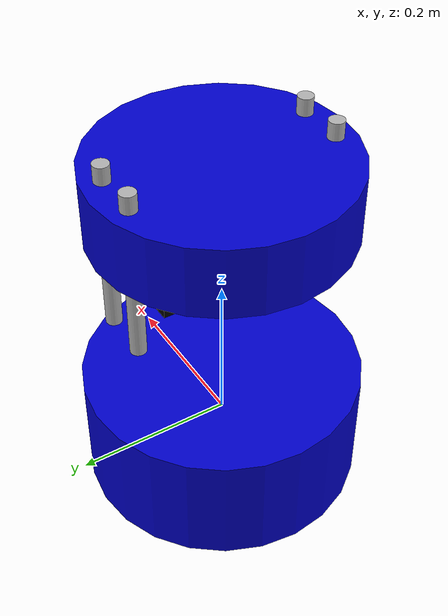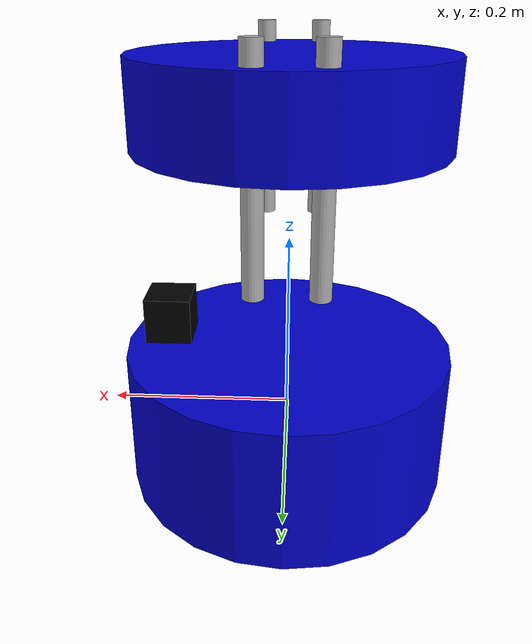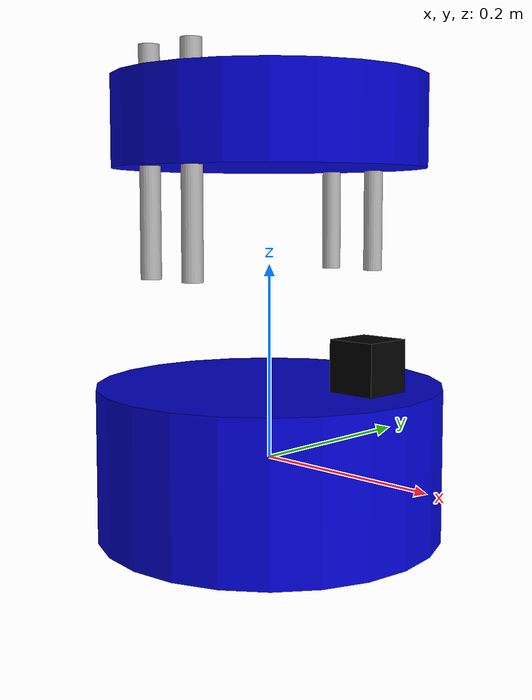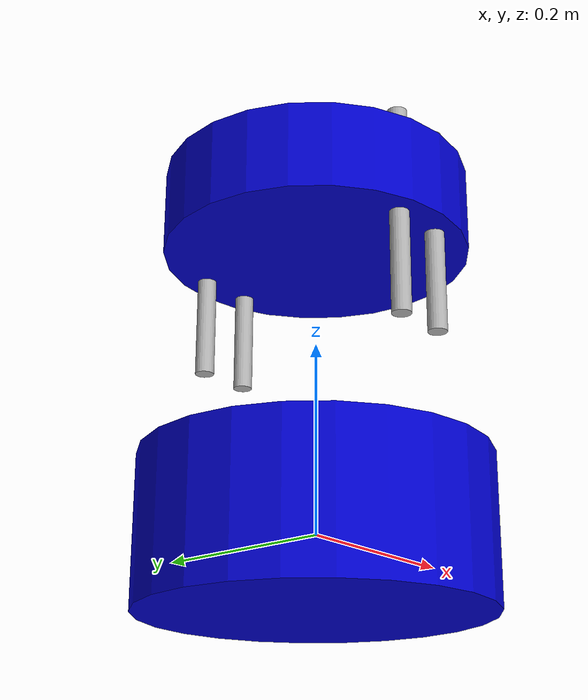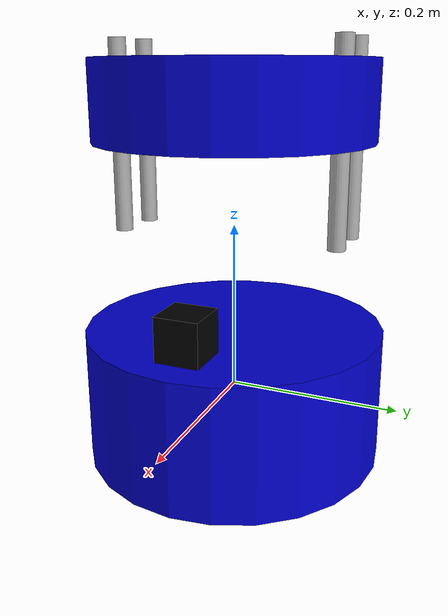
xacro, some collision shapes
<?xml version="1.0"?>
<robot xmlns:xacro="http://www.ros.org/wiki/xacro" name="barista_robot">

  <!-- Include all macros -->
  <xacro:include filename="$(find barista_robot_description)/xacro/drive_wheel.xacro" />
  <xacro:include filename="$(find barista_robot_description)/xacro/caster_wheel.xacro" />
  <xacro:include filename="$(find barista_robot_description)/xacro/standoff_rod.xacro" />
  <xacro:include filename="$(find barista_robot_description)/xacro/cup_holder_tray.xacro" />
  <xacro:include filename="$(find barista_robot_description)/xacro/laser_scanner.xacro" />

  <!-- Define arguments -->
  <xacro:arg name="include_laser" default="true"/>
  <xacro:arg name="robot_color" default="Blue"/>

  <!-- Set color property based on the robot_color parameter -->
  <xacro:property name="robot_gazebo_color" value="Blue"/>
  <xacro:property name="robot_visual_color" value="robot_blue"/>
  <xacro:if value="${'$(arg robot_color)' == 'Red'}">
    <xacro:property name="robot_gazebo_color" value="Red"/>
    <xacro:property name="robot_visual_color" value="robot_red"/>
  </xacro:if>

  <!-- Define colors -->
  <material name="robot_blue">
    <color rgba="0.0 0.0 0.8 1.0"/>
  </material>

  <material name="robot_red">
    <color rgba="0.8 0.0 0.0 1.0"/>
  </material>

  <material name="robot_black">
    <color rgba="0.0 0.0 0.0 1.0"/>
  </material>

  <material name="robot_white">
    <color rgba="1.0 1.0 1.0 1.0"/>
  </material>

  <material name="robot_silver">
    <color rgba="0.7 0.7 0.7 1.0"/>
  </material>

  <!-- Base Link (Main Body) - cylinder with dimensions 356mm width, 155mm height -->
  <link name="base_link">
    <inertial>
      <origin xyz="0 0 0" rpy="0 0 0"/>
      <mass value="5.0"/>
      <inertia ixx="0.1" ixy="0" ixz="0" iyy="0.1" iyz="0" izz="0.1"/>
    </inertial>
    <visual>
      <origin xyz="0 0 0" rpy="0 0 0"/>
      <geometry>
        <cylinder radius="0.178" length="0.155"/>
      </geometry>
      <material name="${robot_visual_color}"/>
    </visual>
    <collision>
      <origin xyz="0 0 0" rpy="0 0 0"/>
      <geometry>
        <cylinder radius="0.178" length="0.155"/>
      </geometry>
    </collision>
  </link>

  <!-- Gazebo color for the base_link -->
  <gazebo reference="base_link">
    <material>Gazebo/${robot_gazebo_color}</material>
  </gazebo>

  <!-- Add wheels using macros -->
  <xacro:drive_wheel prefix="left" reflect="1" />
  <xacro:drive_wheel prefix="right" reflect="-1" />

  <!-- Add caster wheels using macros -->
  <xacro:caster_wheel prefix="front" x_offset="0.12" y_offset="0" />
  <xacro:caster_wheel prefix="rear" x_offset="-0.12" y_offset="0" />

  <!-- Add standoff rods using macros -->
  <xacro:standoff_rod prefix="front_left" x_offset="0.03" y_offset="0.13" />
  <xacro:standoff_rod prefix="front_right" x_offset="0.03" y_offset="-0.13" />
  <xacro:standoff_rod prefix="rear_left" x_offset="-0.03" y_offset="0.13" />
  <xacro:standoff_rod prefix="rear_right" x_offset="-0.03" y_offset="-0.13" />

  <!-- Add cup holder tray using macro -->
  <xacro:cup_holder_tray robot_color="$(arg robot_color)" />

  <!-- Add laser scanner if include_laser is true -->
  <xacro:if value="$(arg include_laser)">
    <xacro:laser_scanner />
  </xacro:if>

  <!-- Differential drive controller -->
  <gazebo>
    <plugin name="gazebo_ros_diff_drive" filename="libgazebo_ros_diff_drive.so">
      <ros>
        <!-- Namespace will be automatically prefixed by the robot's namespace -->
        <namespace>/</namespace>
      </ros>
      <update_rate>100.0</update_rate>
      <left_joint>left_wheel_joint</left_joint>
      <right_joint>right_wheel_joint</right_joint>
      <wheel_separation>0.356</wheel_separation>
      <wheel_diameter>0.0704</wheel_diameter>
      <max_wheel_acceleration>1.0</max_wheel_acceleration>
      <max_wheel_torque>20</max_wheel_torque>
      <command_topic>cmd_vel</command_topic>
      <publish_odom>true</publish_odom>
      <publish_odom_tf>true</publish_odom_tf>
      <publish_wheel_tf>false</publish_wheel_tf>
      <odometry_topic>odom</odometry_topic>
      <odometry_frame>odom</odometry_frame>
      <robot_base_frame>base_link</robot_base_frame>
    </plugin>
  </gazebo>

</robot>

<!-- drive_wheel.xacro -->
<robot xmlns:xacro="http://www.ros.org/wiki/xacro">

  <!-- Drive wheel macro -->
  <xacro:macro name="drive_wheel" params="prefix reflect">
    <!-- Constants for the wheel -->
    <xacro:property name="wheel_radius" value="0.0352" />
    <xacro:property name="wheel_width" value="0.0206" />
    <xacro:property name="wheel_mass" value="0.5" />
    <xacro:property name="wheel_joint_offset_y" value="0.14" />

    <link name="${prefix}_wheel_link">
      <inertial>
        <origin xyz="0 0 0" rpy="0 0 0"/>
        <mass value="${wheel_mass}"/>
        <inertia
          ixx="${wheel_mass * (3*wheel_radius*wheel_radius + wheel_width*wheel_width) / 12}"
          ixy="0"
          ixz="0"
          iyy="${wheel_mass * (3*wheel_radius*wheel_radius + wheel_width*wheel_width) / 12}"
          iyz="0"
          izz="${wheel_mass * wheel_radius*wheel_radius / 2}"/>
      </inertial>
      <visual>
        <origin xyz="0 0 0" rpy="${pi/2} 0 0"/>
        <geometry>
          <cylinder radius="${wheel_radius}" length="${wheel_width}"/>
        </geometry>
        <material name="robot_black"/>
      </visual>
      <collision>
        <origin xyz="0 0 0" rpy="${pi/2} 0 0"/>
        <geometry>
          <cylinder radius="${wheel_radius}" length="${wheel_width}"/>
        </geometry>
      </collision>
    </link>

    <joint name="${prefix}_wheel_joint" type="continuous">
      <parent link="base_link"/>
      <child link="${prefix}_wheel_link"/>
      <origin xyz="0 ${reflect * wheel_joint_offset_y} ${wheel_radius}" rpy="0 0 0"/>
      <axis xyz="0 1 0"/>
    </joint>

    <!-- Gazebo-specific properties -->
    <gazebo reference="${prefix}_wheel_link">
      <material>Gazebo/Black</material>
      <mu1>0.8</mu1>
      <mu2>0.8</mu2>
    </gazebo>
  </xacro:macro>

</robot>

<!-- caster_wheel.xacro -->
<robot xmlns:xacro="http://www.ros.org/wiki/xacro">

  <!-- Caster wheel macro -->
  <xacro:macro name="caster_wheel" params="prefix x_offset y_offset">
    <!-- Constants for the wheel -->
    <xacro:property name="caster_radius" value="0.025" />
    <xacro:property name="caster_mass" value="0.1" />

    <link name="${prefix}_caster_link">
      <inertial>
        <origin xyz="0 0 0" rpy="0 0 0"/>
        <mass value="${caster_mass}"/>
        <inertia
          ixx="${2.0*caster_mass*caster_radius*caster_radius/5.0}"
          ixy="0"
          ixz="0"
          iyy="${2.0*caster_mass*caster_radius*caster_radius/5.0}"
          iyz="0"
          izz="${2.0*caster_mass*caster_radius*caster_radius/5.0}"/>
      </inertial>
      <visual>
        <origin xyz="0 0 0" rpy="0 0 0"/>
        <geometry>
          <sphere radius="${caster_radius}"/>
        </geometry>
        <material name="robot_black"/>
      </visual>
      <collision>
        <origin xyz="0 0 0" rpy="0 0 0"/>
        <geometry>
          <sphere radius="${caster_radius}"/>
        </geometry>
      </collision>
    </link>

    <joint name="${prefix}_caster_joint" type="fixed">
      <parent link="base_link"/>
      <child link="${prefix}_caster_link"/>
      <origin xyz="${x_offset} ${y_offset} ${caster_radius}" rpy="0 0 0"/>
    </joint>

    <!-- Gazebo-specific properties -->
    <gazebo reference="${prefix}_caster_link">
      <material>Gazebo/Black</material>
      <mu1>0.0</mu1>
      <mu2>0.0</mu2>
    </gazebo>
  </xacro:macro>

</robot>

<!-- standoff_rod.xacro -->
<robot xmlns:xacro="http://www.ros.org/wiki/xacro">

  <!-- Standoff rod macro -->
  <xacro:macro name="standoff_rod" params="prefix x_offset y_offset">
    <!-- Constants for the rod - 20mm diameter (0.01m radius), 220mm length -->
    <xacro:property name="rod_radius" value="0.01" />
    <xacro:property name="rod_length" value="0.22" />
    <xacro:property name="rod_mass" value="0.1" />
    <xacro:property name="rod_z_offset" value="0.19" />

    <link name="${prefix}_rod_link">
      <inertial>
        <origin xyz="0 0 ${rod_length/2}" rpy="0 0 0"/>
        <mass value="${rod_mass}"/>
        <inertia
          ixx="${rod_mass * (3*rod_radius*rod_radius + rod_length*rod_length) / 12}"
          ixy="0"
          ixz="0"
          iyy="${rod_mass * (3*rod_radius*rod_radius + rod_length*rod_length) / 12}"
          iyz="0"
          izz="${rod_mass * rod_radius*rod_radius / 2}"/>
      </inertial>
      <visual>
        <origin xyz="0 0 ${rod_length/2}" rpy="0 0 0"/>
        <geometry>
          <cylinder radius="${rod_radius}" length="${rod_length}"/>
        </geometry>
        <material name="robot_silver"/>
      </visual>
      <collision>
        <origin xyz="0 0 ${rod_length/2}" rpy="0 0 0"/>
        <geometry>
          <cylinder radius="${rod_radius}" length="${rod_length}"/>
        </geometry>
      </collision>
    </link>

    <joint name="${prefix}_rod_joint" type="fixed">
      <parent link="base_link"/>
      <child link="${prefix}_rod_link"/>
      <origin xyz="${x_offset} ${y_offset} ${rod_z_offset}" rpy="0 0 0"/>
    </joint>

    <!-- Gazebo-specific properties -->
    <gazebo reference="${prefix}_rod_link">
      <material>Gazebo/Grey</material>
    </gazebo>
  </xacro:macro>

</robot>

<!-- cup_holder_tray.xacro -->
<robot xmlns:xacro="http://www.ros.org/wiki/xacro">

  <!-- Cup holder tray macro -->
  <xacro:macro name="cup_holder_tray" params="robot_color:=Blue">
    <!-- Constants for the tray - 320mm width (0.16m radius), 90mm height -->
    <xacro:property name="tray_radius" value="0.16" />
    <xacro:property name="tray_height" value="0.09" />
    <xacro:property name="tray_mass" value="1.0" />

    <!-- Set the visual material based on robot color -->
    <xacro:property name="tray_material" value="robot_blue" />
    <xacro:if value="${robot_color == 'Red'}">
      <xacro:property name="tray_material" value="robot_red" />
    </xacro:if>

    <!-- Set the Gazebo color based on robot color -->
    <xacro:property name="tray_gazebo_color" value="Blue" />
    <xacro:if value="${robot_color == 'Red'}">
      <xacro:property name="tray_gazebo_color" value="Red" />
    </xacro:if>

    <link name="cup_holder_tray_link">
      <inertial>
        <origin xyz="0 0 ${tray_height/2}" rpy="0 0 0"/>
        <mass value="${tray_mass}"/>
        <inertia
          ixx="${tray_mass * (3*tray_radius*tray_radius + tray_height*tray_height) / 12}"
          ixy="0"
          ixz="0"
          iyy="${tray_mass * (3*tray_radius*tray_radius + tray_height*tray_height) / 12}"
          iyz="0"
          izz="${tray_mass * tray_radius*tray_radius / 2}"/>
      </inertial>
      <visual>
        <origin xyz="0 0 ${tray_height/2}" rpy="0 0 0"/>
        <geometry>
          <cylinder radius="${tray_radius}" length="${tray_height}"/>
        </geometry>
        <material name="${tray_material}"/>
      </visual>
      <collision>
        <origin xyz="0 0 ${tray_height/2}" rpy="0 0 0"/>
        <geometry>
          <cylinder radius="${tray_radius}" length="${tray_height}"/>
        </geometry>
      </collision>
    </link>

    <joint name="cup_holder_tray_joint" type="fixed">
      <parent link="base_link"/>
      <child link="cup_holder_tray_link"/>
      <origin xyz="0 0 0.2975" rpy="0 0 0"/>
    </joint>

    <!-- Gazebo-specific properties -->
    <gazebo reference="cup_holder_tray_link">
      <material>Gazebo/${tray_gazebo_color}</material>
    </gazebo>
  </xacro:macro>

</robot>

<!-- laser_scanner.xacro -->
<robot xmlns:xacro="http://www.ros.org/wiki/xacro">

  <!-- Laser scanner macro -->
  <xacro:macro name="laser_scanner">
    <!-- Constants for the laser scanner -->
    <xacro:property name="laser_mass" value="0.1" />
    <xacro:property name="laser_x_offset" value="0.13" />
    <xacro:property name="laser_y_offset" value="0.0" />
    <xacro:arg name="robot_name" default="barista"/>

    <!-- Set robot_name property based on the argument -->
    <xacro:property name="robot_name" value="$(arg robot_name)"/>

    <link name="laser_link">
      <inertial>
        <origin xyz="0 0 0" rpy="0 0 0"/>
        <mass value="${laser_mass}"/>
        <inertia ixx="0.0001" ixy="0" ixz="0" iyy="0.0001" iyz="0" izz="0.0001"/>
      </inertial>
      <visual>
        <origin xyz="0 0 0" rpy="0 0 0"/>
        <geometry>
          <mesh filename="package://barista_robot_description/meshes/hokuyo.dae"/>
        </geometry>
        <material name="robot_black"/>
      </visual>
      <collision>
        <origin xyz="0 0 0" rpy="0 0 0"/>
        <geometry>
          <box size="0.05 0.05 0.05"/>
        </geometry>
      </collision>
    </link>

    <joint name="laser_joint" type="fixed">
      <parent link="base_link"/>
      <child link="laser_link"/>
      <origin xyz="${laser_x_offset} ${laser_y_offset} 0.11" rpy="0 0 0"/>
    </joint>

    <!-- Gazebo-specific properties -->
    <gazebo reference="laser_link">
      <material>Gazebo/Grey</material>
      <sensor type="ray" name="head_hokuyo_sensor">
        <pose>0 0 0.2 0 0 0</pose>
        <visualize>true</visualize>
        <update_rate>10</update_rate>
        <ray>
          <scan>
            <horizontal>
              <samples>720</samples>
              <resolution>1</resolution>
              <min_angle>-1.570796</min_angle>
              <max_angle>1.570796</max_angle>
            </horizontal>
          </scan>
          <range>
            <min>0.10</min>
            <max>10.0</max>
            <resolution>0.01</resolution>
          </range>
          <noise>
            <type>gaussian</type>
            <mean>0.0</mean>
            <stddev>0.01</stddev>
          </noise>
        </ray>
        <plugin name="gazebo_ros_head_hokuyo_controller" filename="libgazebo_ros_ray_sensor.so">
          <ros>
            <namespace>/${robot_name}</namespace>
            <remapping>~/out:=scan</remapping>
          </ros>
          <output_type>sensor_msgs/LaserScan</output_type>
          <frame_name>${robot_name}/laser_link</frame_name>
        </plugin>
      </sensor>
    </gazebo>
  </xacro:macro>

</robot>
